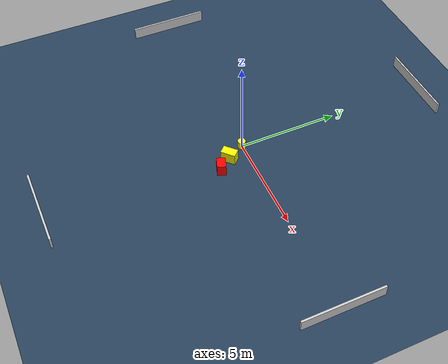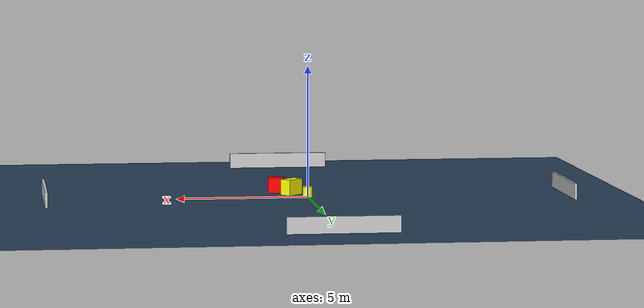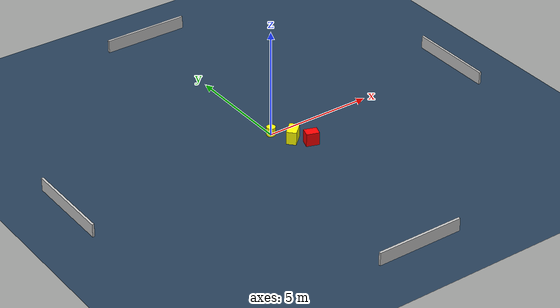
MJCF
<?xml version="1.0" ?>
<mujoco model="generated_environment">
  <option timestep="0.01" integrator="RK4" cone="elliptic"/>
  <default>
    <geom density="1"/>
  </default>
  <asset>
    <texture builtin="gradient" height="3072" name="skybox" rgb1="0.3 0.5 0.7" rgb2="0 0 0" type="skybox" width="512"/>
    <texture builtin="checker" height="300" name="groundplane" rgb1="0.2 0.3 0.4" rgb2="0.1 0.2 0.3" type="2d" width="300"/>
    <material name="groundplane" reflectance="0.2" texrepeat="5 5" texture="groundplane"/>
  </asset>
  <worldbody>
    <light dir="0 0 -1" directional="true" pos="0 0 1.5"/>
    <geom condim="3" friction="0.5 0.005 0.001" material="groundplane" name="floor" pos="0 0 0" size="0 0 0.05" type="plane"/>
    <body name="walls">
      <geom name="wall_1" condim="4" pos="-10.0 0.0 0.3" rgba="0.800000011920929 0.800000011920929 0.800000011920929 1.0" size="0.05 2.0 0.3" type="box"/>
      <geom name="wall_2" condim="4" pos="10.0 0.0 0.3" rgba="0.800000011920929 0.800000011920929 0.800000011920929 1.0" size="0.05 2.0 0.3" type="box"/>
      <geom name="wall_3" condim="4" pos="0.0 -10.0 0.3" rgba="0.800000011920929 0.800000011920929 0.800000011920929 1.0" size="2.0 0.05 0.3" type="box"/>
      <geom name="wall_4" condim="4" pos="0.0 10.0 0.3" rgba="0.800000011920929 0.800000011920929 0.800000011920929 1.0" size="2.0 0.05 0.3" type="box"/>
    </body>
    <body name="robot">
      <joint name="joint_x" type="slide" pos="0 0 0" axis="1 0 0"/>
      <joint name="joint_y" type="slide" pos="0 0 0" axis="0 1 0"/>
      <geom name="robot" type="cylinder" pos="0.0 0.0 0.2" size="0.2 0.2 0.0" mass="5.0" friction="1.0 0.005 0.0001" condim="4" rgba="1.0 1.0 0.0 1.0"/>
    </body>
    <body name="obstacle_1_movable">
      <geom name="obstacle_1_movable" condim="4" pos="0.5145058995956787 -0.8846900372072365 0.3" euler="0 0 312.76645385383995" friction="0.0 0.005 0.001" rgba="1.0 1.0 0.0 1.0" size="0.2223741907255476 0.37020082044076674 0.3" type="box" mass="0.1"/>
      <joint type="free"/>
    </body>
    <body name="obstacle_2_static">
      <geom name="obstacle_2_static" condim="4" pos="1.014620795274255 -1.5280164052256784 0.3" euler="0 0 71.27045324915764" friction="0.0 0.005 0.001" rgba="1.0 0.0 0.0 1.0" size="0.21854066779069137 0.29284291268275986 0.3" type="box"/>
    </body>
  </worldbody>
  <actuator>
    <motor name="actuator_x" joint="joint_x" gear="1" ctrlrange="-1 1"/>
    <motor name="actuator_y" joint="joint_y" gear="1" ctrlrange="-1 1"/>
  </actuator>
</mujoco>
